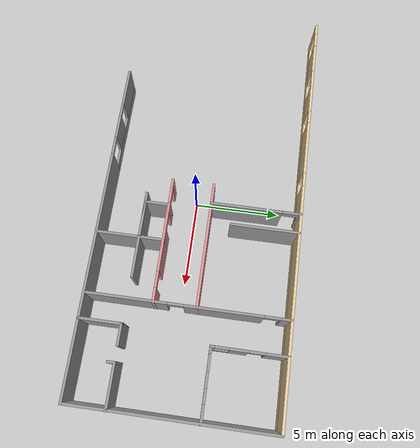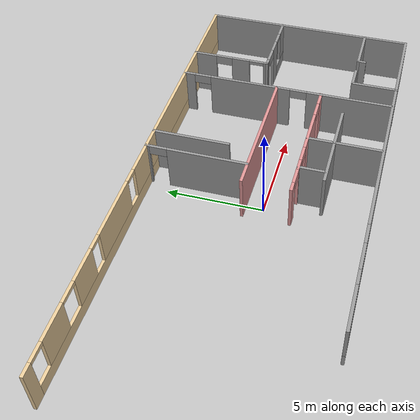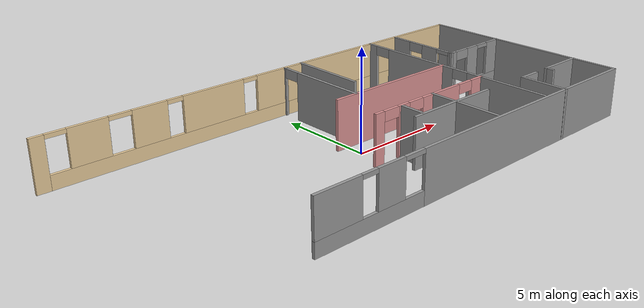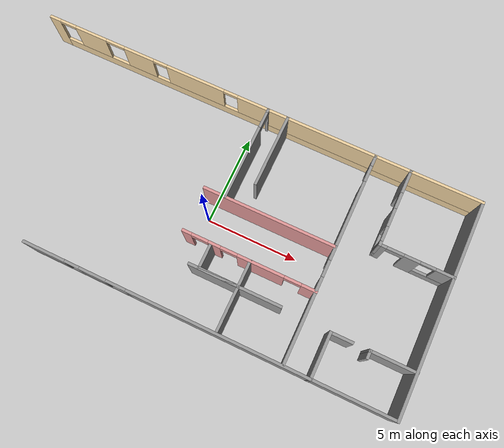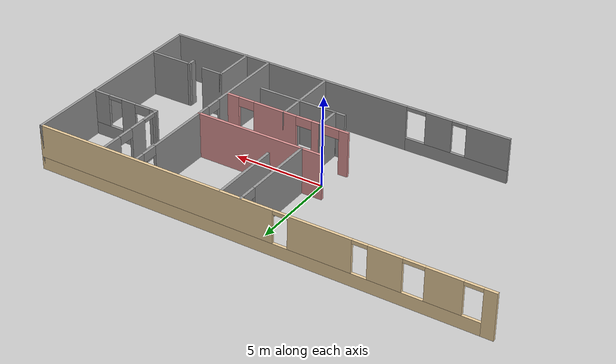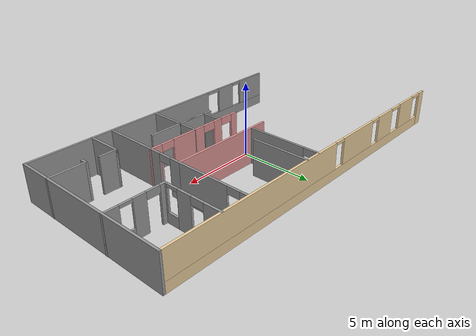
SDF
<sdf version="1.6">
 <model name="dunder_mifflin_scranton_full">
  <pose>-0.003881 -0.031915 0 0 -0 0</pose>
  <link name="Wall_31">
   <collision name="Wall_31_Collision">
    <geometry><box><size>7.25 0.15 2.5</size></box></geometry>
    <pose>0 0 1.25 0 -0 0</pose>
   </collision>
   <visual name="Wall_31_Visual">
    <pose>0 0 1.25 0 -0 0</pose>
    <geometry><box><size>7.25 0.15 2.5</size></box></geometry>
    <material>
     <script><uri>file://media/materials/scripts/gazebo.material</uri><name>Gazebo/Grey</name></script>
     <ambient>0.866667 0.584314 0.584314 1</ambient>
    </material>
    <meta><layer>0</layer></meta>
   </visual>
   <pose>3.02474 0.997169 0 0 -0 0</pose>
  </link>
  <link name="Wall_32">
   <pose>6.57474 -2.05283 0 0 -0 -1.5708</pose>
   <visual name="Wall_32_Visual_0">
    <pose>-2.72846 0 1.25 0 -0 0</pose>
    <geometry><box><size>0.793072 0.15 2.5</size></box></geometry>
    <material>
     <script><uri>file://media/materials/scripts/gazebo.material</uri><name>Gazebo/Grey</name></script>
     <ambient>1 1 1 1</ambient>
    </material>
    <meta><layer>0</layer></meta>
   </visual>
   <collision name="Wall_32_Collision_0">
    <geometry><box><size>0.793072 0.15 2.5</size></box></geometry>
    <pose>-2.72846 0 1.25 0 -0 0</pose>
   </collision>
   <visual name="Wall_32_Visual_1">
    <pose>0.846536 0 1.25 0 -0 0</pose>
    <geometry><box><size>4.55693 0.15 2.5</size></box></geometry>
    <material>
     <script><uri>file://media/materials/scripts/gazebo.material</uri><name>Gazebo/Grey</name></script>
     <ambient>1 1 1 1</ambient>
    </material>
    <meta><layer>0</layer></meta>
   </visual>
   <collision name="Wall_32_Collision_1">
    <geometry><box><size>4.55693 0.15 2.5</size></box></geometry>
    <pose>0.846536 0 1.25 0 -0 0</pose>
   </collision>
   <visual name="Wall_32_Visual_2">
    <pose>-1.88193 0 2.25 0 -0 0</pose>
    <geometry><box><size>0.9 0.15 0.5</size></box></geometry>
    <material>
     <script><uri>file://media/materials/scripts/gazebo.material</uri><name>Gazebo/Grey</name></script>
     <ambient>1 1 1 1</ambient>
    </material>
    <meta><layer>0</layer></meta>
   </visual>
   <collision name="Wall_32_Collision_2">
    <geometry><box><size>0.9 0.15 0.5</size></box></geometry>
    <pose>-1.88193 0 2.25 0 -0 0</pose>
   </collision>
  </link>
  <link name="Wall_34">
   <pose>3.04223 -1.39897 0 0 -0 0</pose>
   <visual name="Wall_34_Visual_0">
    <pose>-3.36018 0 1.25 0 -0 0</pose>
    <geometry><box><size>0.529643 0.15 2.5</size></box></geometry>
    <material>
     <script><uri>file://media/materials/scripts/gazebo.material</uri><name>Gazebo/Grey</name></script>
     <ambient>0.866667 0.584314 0.584314 1</ambient>
    </material>
    <meta><layer>0</layer></meta>
   </visual>
   <collision name="Wall_34_Collision_0">
    <geometry><box><size>0.529643 0.15 2.5</size></box></geometry>
    <pose>-3.36018 0 1.25 0 -0 0</pose>
   </collision>
   <visual name="Wall_34_Visual_1">
    <pose>-1.86211 0 1.25 0 -0 0</pose>
    <geometry><box><size>0.666501 0.15 2.5</size></box></geometry>
    <material>
     <script><uri>file://media/materials/scripts/gazebo.material</uri><name>Gazebo/Grey</name></script>
     <ambient>0.866667 0.584314 0.584314 1</ambient>
    </material>
    <meta><layer>0</layer></meta>
   </visual>
   <collision name="Wall_34_Collision_1">
    <geometry><box><size>0.666501 0.15 2.5</size></box></geometry>
    <pose>-1.86211 0 1.25 0 -0 0</pose>
   </collision>
   <visual name="Wall_34_Visual_2">
    <pose>0.624524 0 1.25 0 -0 0</pose>
    <geometry><box><size>2.50676 0.15 2.5</size></box></geometry>
    <material>
     <script><uri>file://media/materials/scripts/gazebo.material</uri><name>Gazebo/Grey</name></script>
     <ambient>0.866667 0.584314 0.584314 1</ambient>
    </material>
    <meta><layer>0</layer></meta>
   </visual>
   <collision name="Wall_34_Collision_2">
    <geometry><box><size>2.50676 0.15 2.5</size></box></geometry>
    <pose>0.624524 0 1.25 0 -0 0</pose>
   </collision>
   <visual name="Wall_34_Visual_3">
    <pose>3.20145 0 1.25 0 -0 0</pose>
    <geometry><box><size>0.847096 0.15 2.5</size></box></geometry>
    <material>
     <script><uri>file://media/materials/scripts/gazebo.material</uri><name>Gazebo/Grey</name></script>
     <ambient>0.866667 0.584314 0.584314 1</ambient>
    </material>
    <meta><layer>0</layer></meta>
   </visual>
   <collision name="Wall_34_Collision_3">
    <geometry><box><size>0.847096 0.15 2.5</size></box></geometry>
    <pose>3.20145 0 1.25 0 -0 0</pose>
   </collision>
   <visual name="Wall_34_Visual_4">
    <pose>-2.64536 0 2.25 0 -0 0</pose>
    <geometry><box><size>0.9 0.15 0.5</size></box></geometry>
    <material>
     <script><uri>file://media/materials/scripts/gazebo.material</uri><name>Gazebo/Grey</name></script>
     <ambient>0.866667 0.584314 0.584314 1</ambient>
    </material>
    <meta><layer>0</layer></meta>
   </visual>
   <collision name="Wall_34_Collision_4">
    <geometry><box><size>0.9 0.15 0.5</size></box></geometry>
    <pose>-2.64536 0 2.25 0 -0 0</pose>
   </collision>
   <visual name="Wall_34_Visual_5">
    <pose>-1.07886 0 2.25 0 -0 0</pose>
    <geometry><box><size>0.9 0.15 0.5</size></box></geometry>
    <material>
     <script><uri>file://media/materials/scripts/gazebo.material</uri><name>Gazebo/Grey</name></script>
     <ambient>0.866667 0.584314 0.584314 1</ambient>
    </material>
    <meta><layer>0</layer></meta>
   </visual>
   <collision name="Wall_34_Collision_5">
    <geometry><box><size>0.9 0.15 0.5</size></box></geometry>
    <pose>-1.07886 0 2.25 0 -0 0</pose>
   </collision>
   <visual name="Wall_34_Visual_6">
    <pose>2.3279 0 2.25 0 -0 0</pose>
    <geometry><box><size>0.9 0.15 0.5</size></box></geometry>
    <material>
     <script><uri>file://media/materials/scripts/gazebo.material</uri><name>Gazebo/Grey</name></script>
     <ambient>0.866667 0.584314 0.584314 1</ambient>
    </material>
    <meta><layer>0</layer></meta>
   </visual>
   <collision name="Wall_34_Collision_6">
    <geometry><box><size>0.9 0.15 0.5</size></box></geometry>
    <pose>2.3279 0 2.25 0 -0 0</pose>
   </collision>
  </link>
  <link name="Wall_36">
   <pose>6.57474 3.54717 0 0 -0 1.5708</pose>
   <visual name="Wall_36_Visual_0">
    <pose>-0.74582 0 1.25 0 -0 0</pose>
    <geometry><box><size>3.75836 0.15 2.5</size></box></geometry>
    <material>
     <script><uri>file://media/materials/scripts/gazebo.material</uri><name>Gazebo/Grey</name></script>
     <ambient>1 1 1 1</ambient>
    </material>
    <meta><layer>0</layer></meta>
   </visual>
   <collision name="Wall_36_Collision_0">
    <geometry><box><size>3.75836 0.15 2.5</size></box></geometry>
    <pose>-0.74582 0 1.25 0 -0 0</pose>
   </collision>
   <visual name="Wall_36_Visual_1">
    <pose>2.32918 0 1.25 0 -0 0</pose>
    <geometry><box><size>0.591641 0.15 2.5</size></box></geometry>
    <material>
     <script><uri>file://media/materials/scripts/gazebo.material</uri><name>Gazebo/Grey</name></script>
     <ambient>1 1 1 1</ambient>
    </material>
    <meta><layer>0</layer></meta>
   </visual>
   <collision name="Wall_36_Collision_1">
    <geometry><box><size>0.591641 0.15 2.5</size></box></geometry>
    <pose>2.32918 0 1.25 0 -0 0</pose>
   </collision>
   <visual name="Wall_36_Visual_2">
    <pose>1.58336 0 2.25 0 -0 0</pose>
    <geometry><box><size>0.9 0.15 0.5</size></box></geometry>
    <material>
     <script><uri>file://media/materials/scripts/gazebo.material</uri><name>Gazebo/Grey</name></script>
     <ambient>1 1 1 1</ambient>
    </material>
    <meta><layer>0</layer></meta>
   </visual>
   <collision name="Wall_36_Collision_2">
    <geometry><box><size>0.9 0.15 0.5</size></box></geometry>
    <pose>1.58336 0 2.25 0 -0 0</pose>
   </collision>
  </link>
  <link name="Wall_38">
   <pose>8.48212 4.07176 0 0 -0 -1.5708</pose>
   <visual name="Wall_38_Visual_0">
    <pose>-1.4899 0 1.25 0 -0 0</pose>
    <geometry><box><size>1.27021 0.15 2.5</size></box></geometry>
    <material>
     <script><uri>file://media/materials/scripts/gazebo.material</uri><name>Gazebo/Grey</name></script>
     <ambient>0.423529 0.423529 0.423529 1</ambient>
    </material>
    <meta><layer>0</layer></meta>
   </visual>
   <collision name="Wall_38_Collision_0">
    <geometry><box><size>1.27021 0.15 2.5</size></box></geometry>
    <pose>-1.4899 0 1.25 0 -0 0</pose>
   </collision>
   <visual name="Wall_38_Visual_1">
    <pose>0.548931 0 1.25 0 -0 0</pose>
    <geometry><box><size>1.00745 0.15 2.5</size></box></geometry>
    <material>
     <script><uri>file://media/materials/scripts/gazebo.material</uri><name>Gazebo/Grey</name></script>
     <ambient>0.423529 0.423529 0.423529 1</ambient>
    </material>
    <meta><layer>0</layer></meta>
   </visual>
   <collision name="Wall_38_Collision_1">
    <geometry><box><size>1.00745 0.15 2.5</size></box></geometry>
    <pose>0.548931 0 1.25 0 -0 0</pose>
   </collision>
   <visual name="Wall_38_Visual_2">
    <pose>1.58883 0 0.35 0 -0 0</pose>
    <geometry><box><size>1.07234 0.15 0.7</size></box></geometry>
    <material>
     <script><uri>file://media/materials/scripts/gazebo.material</uri><name>Gazebo/Grey</name></script>
     <ambient>0.423529 0.423529 0.423529 1</ambient>
    </material>
    <meta><layer>0</layer></meta>
   </visual>
   <collision name="Wall_38_Collision_2">
    <geometry><box><size>1.07234 0.15 0.7</size></box></geometry>
    <pose>1.58883 0 0.35 0 -0 0</pose>
   </collision>
   <visual name="Wall_38_Visual_3">
    <pose>1.98883 0 1.6 0 -0 0</pose>
    <geometry><box><size>0.272344 0.15 1.8</size></box></geometry>
    <material>
     <script><uri>file://media/materials/scripts/gazebo.material</uri><name>Gazebo/Grey</name></script>
     <ambient>0.423529 0.423529 0.423529 1</ambient>
    </material>
    <meta><layer>0</layer></meta>
   </visual>
   <collision name="Wall_38_Collision_3">
    <geometry><box><size>0.272344 0.15 1.8</size></box></geometry>
    <pose>1.98883 0 1.6 0 -0 0</pose>
   </collision>
   <visual name="Wall_38_Visual_4">
    <pose>-0.404794 0 2.25 0 -0 0</pose>
    <geometry><box><size>0.9 0.15 0.5</size></box></geometry>
    <material>
     <script><uri>file://media/materials/scripts/gazebo.material</uri><name>Gazebo/Grey</name></script>
     <ambient>0.423529 0.423529 0.423529 1</ambient>
    </material>
    <meta><layer>0</layer></meta>
   </visual>
   <collision name="Wall_38_Collision_4">
    <geometry><box><size>0.9 0.15 0.5</size></box></geometry>
    <pose>-0.404794 0 2.25 0 -0 0</pose>
   </collision>
   <visual name="Wall_38_Visual_5">
    <pose>1.45266 0 2.4 0 -0 0</pose>
    <geometry><box><size>0.8 0.15 0.2</size></box></geometry>
    <material>
     <script><uri>file://media/materials/scripts/gazebo.material</uri><name>Gazebo/Grey</name></script>
     <ambient>0.423529 0.423529 0.423529 1</ambient>
    </material>
    <meta><layer>0</layer></meta>
   </visual>
   <collision name="Wall_38_Collision_5">
    <geometry><box><size>0.8 0.15 0.2</size></box></geometry>
    <pose>1.45266 0 2.4 0 -0 0</pose>
   </collision>
  </link>
  <link name="Wall_39">
   <pose>10.4071 2.02176 0 0 -0 0</pose>
   <visual name="Wall_39_Visual_0">
    <pose>-1.78157 0 1.25 0 -0 0</pose>
    <geometry><box><size>0.436869 0.15 2.5</size></box></geometry>
    <material>
     <script><uri>file://media/materials/scripts/gazebo.material</uri><name>Gazebo/Grey</name></script>
     <ambient>0.423529 0.423529 0.423529 1</ambient>
    </material>
    <meta><layer>0</layer></meta>
   </visual>
   <collision name="Wall_39_Collision_0">
    <geometry><box><size>0.436869 0.15 2.5</size></box></geometry>
    <pose>-1.78157 0 1.25 0 -0 0</pose>
   </collision>
   <visual name="Wall_39_Visual_1">
    <pose>-0.241405 0 1.25 0 -0 0</pose>
    <geometry><box><size>0.843451 0.15 2.5</size></box></geometry>
    <material>
     <script><uri>file://media/materials/scripts/gazebo.material</uri><name>Gazebo/Grey</name></script>
     <ambient>0.423529 0.423529 0.423529 1</ambient>
    </material>
    <meta><layer>0</layer></meta>
   </visual>
   <collision name="Wall_39_Collision_1">
    <geometry><box><size>0.843451 0.15 2.5</size></box></geometry>
    <pose>-0.241405 0 1.25 0 -0 0</pose>
   </collision>
   <visual name="Wall_39_Visual_2">
    <pose>1.09016 0 0.35 0 -0 0</pose>
    <geometry><box><size>1.81968 0.15 0.7</size></box></geometry>
    <material>
     <script><uri>file://media/materials/scripts/gazebo.material</uri><name>Gazebo/Grey</name></script>
     <ambient>0.423529 0.423529 0.423529 1</ambient>
    </material>
    <meta><layer>0</layer></meta>
   </visual>
   <collision name="Wall_39_Collision_2">
    <geometry><box><size>1.81968 0.15 0.7</size></box></geometry>
    <pose>1.09016 0 0.35 0 -0 0</pose>
   </collision>
   <visual name="Wall_39_Visual_3">
    <pose>1.49016 0 1.6 0 -0 0</pose>
    <geometry><box><size>1.01968 0.15 1.8</size></box></geometry>
    <material>
     <script><uri>file://media/materials/scripts/gazebo.material</uri><name>Gazebo/Grey</name></script>
     <ambient>0.423529 0.423529 0.423529 1</ambient>
    </material>
    <meta><layer>0</layer></meta>
   </visual>
   <collision name="Wall_39_Collision_3">
    <geometry><box><size>1.01968 0.15 1.8</size></box></geometry>
    <pose>1.49016 0 1.6 0 -0 0</pose>
   </collision>
   <visual name="Wall_39_Visual_4">
    <pose>-1.11313 0 2.25 0 -0 0</pose>
    <geometry><box><size>0.9 0.15 0.5</size></box></geometry>
    <material>
     <script><uri>file://media/materials/scripts/gazebo.material</uri><name>Gazebo/Grey</name></script>
     <ambient>0.423529 0.423529 0.423529 1</ambient>
    </material>
    <meta><layer>0</layer></meta>
   </visual>
   <collision name="Wall_39_Collision_4">
    <geometry><box><size>0.9 0.15 0.5</size></box></geometry>
    <pose>-1.11313 0 2.25 0 -0 0</pose>
   </collision>
   <visual name="Wall_39_Visual_5">
    <pose>0.58032 0 2.4 0 -0 0</pose>
    <geometry><box><size>0.8 0.15 0.2</size></box></geometry>
    <material>
     <script><uri>file://media/materials/scripts/gazebo.material</uri><name>Gazebo/Grey</name></script>
     <ambient>0.423529 0.423529 0.423529 1</ambient>
    </material>
    <meta><layer>0</layer></meta>
   </visual>
   <collision name="Wall_39_Collision_5">
    <geometry><box><size>0.8 0.15 0.2</size></box></geometry>
    <pose>0.58032 0 2.4 0 -0 0</pose>
   </collision>
  </link>
  <link name="Wall_41">
   <collision name="Wall_41_Collision">
    <geometry><box><size>2.5 0.15 2.5</size></box></geometry>
    <pose>0 0 1.25 0 -0 0</pose>
   </collision>
   <visual name="Wall_41_Visual">
    <pose>0 0 1.25 0 -0 0</pose>
    <geometry><box><size>2.5 0.15 2.5</size></box></geometry>
    <material>
     <script><uri>file://media/materials/scripts/gazebo.material</uri><name>Gazebo/Grey</name></script>
     <ambient>1 1 1 1</ambient>
    </material>
    <meta><layer>0</layer></meta>
   </visual>
   <pose>11.1549 -2.85065 0 0 -0 3.14159</pose>
  </link>
  <link name="Wall_42">
   <collision name="Wall_42_Collision">
    <geometry><box><size>0.5 0.15 2.5</size></box></geometry>
    <pose>0 0 1.25 0 -0 0</pose>
   </collision>
   <visual name="Wall_42_Visual">
    <pose>0 0 1.25 0 -0 0</pose>
    <geometry><box><size>0.5 0.15 2.5</size></box></geometry>
    <material>
     <script><uri>file://media/materials/scripts/gazebo.material</uri><name>Gazebo/Grey</name></script>
     <ambient>1 1 1 1</ambient>
    </material>
    <meta><layer>0</layer></meta>
   </visual>
   <pose>9.97994 -3.02564 0 0 -0 -1.5708</pose>
  </link>
  <link name="Wall_44">
   <collision name="Wall_44_Collision">
    <geometry><box><size>2.5 0.15 2.5</size></box></geometry>
    <pose>0 0 1.25 0 -0 0</pose>
   </collision>
   <visual name="Wall_44_Visual">
    <pose>0 0 1.25 0 -0 0</pose>
    <geometry><box><size>2.5 0.15 2.5</size></box></geometry>
    <material>
     <script><uri>file://media/materials/scripts/gazebo.material</uri><name>Gazebo/Grey</name></script>
     <ambient>1 1 1 1</ambient>
    </material>
    <meta><layer>0</layer></meta>
   </visual>
   <pose>7.97491 -4.0368 0 0 -0 1.5708</pose>
  </link>
  <link name="Wall_45">
   <collision name="Wall_45_Collision">
    <geometry><box><size>1.25 0.15 2.5</size></box></geometry>
    <pose>0 0 1.25 0 -0 0</pose>
   </collision>
   <visual name="Wall_45_Visual">
    <pose>0 0 1.25 0 -0 0</pose>
    <geometry><box><size>1.25 0.15 2.5</size></box></geometry>
    <material>
     <script><uri>file://media/materials/scripts/gazebo.material</uri><name>Gazebo/Grey</name></script>
     <ambient>1 1 1 1</ambient>
    </material>
    <meta><layer>0</layer></meta>
   </visual>
   <pose>8.52491 -2.8618 0 0 -0 0</pose>
  </link>
  <link name="Wall_55">
   <collision name="Wall_55_Collision">
    <geometry><box><size>1.5 0.15 2.5</size></box></geometry>
    <pose>0 0 1.25 0 -0 0</pose>
   </collision>
   <visual name="Wall_55_Visual">
    <pose>0 0 1.25 0 -0 0</pose>
    <geometry><box><size>1.5 0.15 2.5</size></box></geometry>
    <material>
     <script><uri>file://media/materials/scripts/gazebo.material</uri><name>Gazebo/Grey</name></script>
     <ambient>1 1 1 1</ambient>
    </material>
    <meta><layer>0</layer></meta>
   </visual>
   <pose>1.01387 -2.07397 0 0 -0 -1.5708</pose>
  </link>
  <link name="Wall_56">
   <collision name="Wall_56_Collision">
    <geometry><box><size>2.25 0.15 2.5</size></box></geometry>
    <pose>0 0 1.25 0 -0 0</pose>
   </collision>
   <visual name="Wall_56_Visual">
    <pose>0 0 1.25 0 -0 0</pose>
    <geometry><box><size>2.25 0.15 2.5</size></box></geometry>
    <material>
     <script><uri>file://media/materials/scripts/gazebo.material</uri><name>Gazebo/Grey</name></script>
     <ambient>1 1 1 1</ambient>
    </material>
    <meta><layer>0</layer></meta>
   </visual>
   <pose>2.06386 -2.74897 0 0 -0 0</pose>
  </link>
  <link name="Wall_57">
   <collision name="Wall_57_Collision">
    <geometry><box><size>2.5 0.15 2.5</size></box></geometry>
    <pose>0 0 1.25 0 -0 0</pose>
   </collision>
   <visual name="Wall_57_Visual">
    <pose>0 0 1.25 0 -0 0</pose>
    <geometry><box><size>2.5 0.15 2.5</size></box></geometry>
    <material>
     <script><uri>file://media/materials/scripts/gazebo.material</uri><name>Gazebo/Grey</name></script>
     <ambient>1 1 1 1</ambient>
    </material>
    <meta><layer>0</layer></meta>
   </visual>
   <pose>3.11387 -3.92397 0 0 -0 -1.5708</pose>
  </link>
  <link name="Wall_59">
   <collision name="Wall_59_Collision">
    <geometry><box><size>1.5 0.15 2.5</size></box></geometry>
    <pose>0 0 1.25 0 -0 0</pose>
   </collision>
   <visual name="Wall_59_Visual">
    <pose>0 0 1.25 0 -0 0</pose>
    <geometry><box><size>1.5 0.15 2.5</size></box></geometry>
    <material>
     <script><uri>file://media/materials/scripts/gazebo.material</uri><name>Gazebo/Grey</name></script>
     <ambient>1 1 1 1</ambient>
    </material>
    <meta><layer>0</layer></meta>
   </visual>
   <pose>3.11387 -2.07397 0 0 -0 1.5708</pose>
  </link>
  <link name="Wall_6">
   <pose>0.017879 6.15 0 0 -0 0</pose>
   <visual name="Wall_6_Visual_0">
    <pose>-12.0548 0 1.25 0 -0 0</pose>
    <geometry><box><size>0.640363 0.15 2.5</size></box></geometry>
    <material>
     <script><uri>file://media/materials/scripts/gazebo.material</uri><name>Gazebo/Grey</name></script>
     <ambient>0.921569 0.807843 0.615686 1</ambient>
    </material>
    <meta><layer>0</layer></meta>
   </visual>
   <collision name="Wall_6_Collision_0">
    <geometry><box><size>0.640363 0.15 2.5</size></box></geometry>
    <pose>-12.0548 0 1.25 0 -0 0</pose>
   </collision>
   <visual name="Wall_6_Visual_1">
    <pose>0.320182 0 0.35 0 -0 0</pose>
    <geometry><box><size>24.1096 0.15 0.7</size></box></geometry>
    <material>
     <script><uri>file://media/materials/scripts/gazebo.material</uri><name>Gazebo/Grey</name></script>
     <ambient>0.921569 0.807843 0.615686 1</ambient>
    </material>
    <meta><layer>0</layer></meta>
   </visual>
   <collision name="Wall_6_Collision_1">
    <geometry><box><size>24.1096 0.15 0.7</size></box></geometry>
    <pose>0.320182 0 0.35 0 -0 0</pose>
   </collision>
   <visual name="Wall_6_Visual_2">
    <pose>-9.87682 0 1.6 0 -0 0</pose>
    <geometry><box><size>1.84964 0.15 1.8</size></box></geometry>
    <material>
     <script><uri>file://media/materials/scripts/gazebo.material</uri><name>Gazebo/Grey</name></script>
     <ambient>0.921569 0.807843 0.615686 1</ambient>
    </material>
    <meta><layer>0</layer></meta>
   </visual>
   <collision name="Wall_6_Collision_2">
    <geometry><box><size>1.84964 0.15 1.8</size></box></geometry>
    <pose>-9.87682 0 1.6 0 -0 0</pose>
   </collision>
   <visual name="Wall_6_Visual_3">
    <pose>-6.99137 0 1.6 0 -0 0</pose>
    <geometry><box><size>1.74331 0.15 1.8</size></box></geometry>
    <material>
     <script><uri>file://media/materials/scripts/gazebo.material</uri><name>Gazebo/Grey</name></script>
     <ambient>0.921569 0.807843 0.615686 1</ambient>
    </material>
    <meta><layer>0</layer></meta>
   </visual>
   <collision name="Wall_6_Collision_3">
    <geometry><box><size>1.74331 0.15 1.8</size></box></geometry>
    <pose>-6.99137 0 1.6 0 -0 0</pose>
   </collision>
   <visual name="Wall_6_Visual_4">
    <pose>-3.6528 0 1.6 0 -0 0</pose>
    <geometry><box><size>3.33383 0.15 1.8</size></box></geometry>
    <material>
     <script><uri>file://media/materials/scripts/gazebo.material</uri><name>Gazebo/Grey</name></script>
     <ambient>0.921569 0.807843 0.615686 1</ambient>
    </material>
    <meta><layer>0</layer></meta>
   </visual>
   <collision name="Wall_6_Collision_4">
    <geometry><box><size>3.33383 0.15 1.8</size></box></geometry>
    <pose>-3.6528 0 1.6 0 -0 0</pose>
   </collision>
   <visual name="Wall_6_Visual_5">
    <pose>5.59456 0 1.6 0 -0 0</pose>
    <geometry><box><size>13.5609 0.15 1.8</size></box></geometry>
    <material>
     <script><uri>file://media/materials/scripts/gazebo.material</uri><name>Gazebo/Grey</name></script>
     <ambient>0.921569 0.807843 0.615686 1</ambient>
    </material>
    <meta><layer>0</layer></meta>
   </visual>
   <collision name="Wall_6_Collision_5">
    <geometry><box><size>13.5609 0.15 1.8</size></box></geometry>
    <pose>5.59456 0 1.6 0 -0 0</pose>
   </collision>
   <visual name="Wall_6_Visual_6">
    <pose>-11.2681 0 2.4 0 -0 0</pose>
    <geometry><box><size>0.933 0.15 0.2</size></box></geometry>
    <material>
     <script><uri>file://media/materials/scripts/gazebo.material</uri><name>Gazebo/Grey</name></script>
     <ambient>0.921569 0.807843 0.615686 1</ambient>
    </material>
    <meta><layer>0</layer></meta>
   </visual>
   <collision name="Wall_6_Collision_6">
    <geometry><box><size>0.933 0.15 0.2</size></box></geometry>
    <pose>-11.2681 0 2.4 0 -0 0</pose>
   </collision>
   <visual name="Wall_6_Visual_7">
    <pose>-8.40751 0 2.4 0 -0 0</pose>
    <geometry><box><size>1.08897 0.15 0.2</size></box></geometry>
    <material>
     <script><uri>file://media/materials/scripts/gazebo.material</uri><name>Gazebo/Grey</name></script>
     <ambient>0.921569 0.807843 0.615686 1</ambient>
    </material>
    <meta><layer>0</layer></meta>
   </visual>
   <collision name="Wall_6_Collision_7">
    <geometry><box><size>1.08897 0.15 0.2</size></box></geometry>
    <pose>-8.40751 0 2.4 0 -0 0</pose>
   </collision>
   <visual name="Wall_6_Visual_8">
    <pose>-5.71972 0 2.4 0 -0 0</pose>
    <geometry><box><size>0.8 0.15 0.2</size></box></geometry>
    <material>
     <script><uri>file://media/materials/scripts/gazebo.material</uri><name>Gazebo/Grey</name></script>
     <ambient>0.921569 0.807843 0.615686 1</ambient>
    </material>
    <meta><layer>0</layer></meta>
   </visual>
   <collision name="Wall_6_Collision_8">
    <geometry><box><size>0.8 0.15 0.2</size></box></geometry>
    <pose>-5.71972 0 2.4 0 -0 0</pose>
   </collision>
   <visual name="Wall_6_Visual_9">
    <pose>-1.58589 0 2.4 0 -0 0</pose>
    <geometry><box><size>0.8 0.15 0.2</size></box></geometry>
    <material>
     <script><uri>file://media/materials/scripts/gazebo.material</uri><name>Gazebo/Grey</name></script>
     <ambient>0.921569 0.807843 0.615686 1</ambient>
    </material>
    <meta><layer>0</layer></meta>
   </visual>
   <collision name="Wall_6_Collision_9">
    <geometry><box><size>0.8 0.15 0.2</size></box></geometry>
    <pose>-1.58589 0 2.4 0 -0 0</pose>
   </collision>
  </link>
  <link name="Wall_62">
   <collision name="Wall_62_Collision">
    <geometry><box><size>5 0.15 2.5</size></box></geometry>
    <pose>0 0 1.25 0 -0 0</pose>
   </collision>
   <visual name="Wall_62_Visual">
    <pose>0 0 1.25 0 -0 0</pose>
    <geometry><box><size>5 0.15 2.5</size></box></geometry>
    <material>
     <script><uri>file://media/materials/scripts/gazebo.material</uri><name>Gazebo/Grey</name></script>
     <ambient>1 1 1 1</ambient>
    </material>
    <meta><layer>0</layer></meta>
   </visual>
   <pose>2.93165 -2.76319 0 0 -0 0</pose>
  </link>
  <link name="Wall_7">
   <collision name="Wall_7_Collision">
    <geometry><box><size>11.5 0.15 2.5</size></box></geometry>
    <pose>0 0 1.25 0 -0 0</pose>
   </collision>
   <visual name="Wall_7_Visual">
    <pose>0 0 1.25 0 -0 0</pose>
    <geometry><box><size>11.5 0.15 2.5</size></box></geometry>
    <material>
     <script><uri>file://media/materials/scripts/gazebo.material</uri><name>Gazebo/Grey</name></script>
     <ambient>1 1 1 1</ambient>
    </material>
    <meta><layer>0</layer></meta>
   </visual>
   <pose>12.3179 0.475 0 0 -0 -1.5708</pose>
  </link>
  <link name="Wall_77">
   <pose>0.584717 3.57027 0 0 -0 1.5708</pose>
   <visual name="Wall_77_Visual_0">
    <pose>-0.554466 0 1.25 0 -0 0</pose>
    <geometry><box><size>4.14107 0.15 2.5</size></box></geometry>
    <material>
     <script><uri>file://media/materials/scripts/gazebo.material</uri><name>Gazebo/Grey</name></script>
     <ambient>1 1 1 1</ambient>
    </material>
    <meta><layer>0</layer></meta>
   </visual>
   <collision name="Wall_77_Collision_0">
    <geometry><box><size>4.14107 0.15 2.5</size></box></geometry>
    <pose>-0.554466 0 1.25 0 -0 0</pose>
   </collision>
   <visual name="Wall_77_Visual_1">
    <pose>2.52053 0 1.25 0 -0 0</pose>
    <geometry><box><size>0.208931 0.15 2.5</size></box></geometry>
    <material>
     <script><uri>file://media/materials/scripts/gazebo.material</uri><name>Gazebo/Grey</name></script>
     <ambient>1 1 1 1</ambient>
    </material>
    <meta><layer>0</layer></meta>
   </visual>
   <collision name="Wall_77_Collision_1">
    <geometry><box><size>0.208931 0.15 2.5</size></box></geometry>
    <pose>2.52053 0 1.25 0 -0 0</pose>
   </collision>
   <visual name="Wall_77_Visual_2">
    <pose>1.96607 0 2.25 0 -0 0</pose>
    <geometry><box><size>0.9 0.15 0.5</size></box></geometry>
    <material>
     <script><uri>file://media/materials/scripts/gazebo.material</uri><name>Gazebo/Grey</name></script>
     <ambient>1 1 1 1</ambient>
    </material>
    <meta><layer>0</layer></meta>
   </visual>
   <collision name="Wall_77_Collision_2">
    <geometry><box><size>0.9 0.15 0.5</size></box></geometry>
    <pose>1.96607 0 2.25 0 -0 0</pose>
   </collision>
  </link>
  <link name="Wall_8">
   <pose>2.51788 -5.2 0 0 -0 3.14159</pose>
   <visual name="Wall_8_Visual_0">
    <pose>-2.83559 0 1.25 0 -0 0</pose>
    <geometry><box><size>14.0788 0.15 2.5</size></box></geometry>
    <material>
     <script><uri>file://media/materials/scripts/gazebo.material</uri><name>Gazebo/Grey</name></script>
     <ambient>1 1 1 1</ambient>
    </material>
    <meta><layer>0</layer></meta>
   </visual>
   <collision name="Wall_8_Collision_0">
    <geometry><box><size>14.0788 0.15 2.5</size></box></geometry>
    <pose>-2.83559 0 1.25 0 -0 0</pose>
   </collision>
   <visual name="Wall_8_Visual_1">
    <pose>7.03941 0 0.35 0 -0 0</pose>
    <geometry><box><size>5.67118 0.15 0.7</size></box></geometry>
    <material>
     <script><uri>file://media/materials/scripts/gazebo.material</uri><name>Gazebo/Grey</name></script>
     <ambient>1 1 1 1</ambient>
    </material>
    <meta><layer>0</layer></meta>
   </visual>
   <collision name="Wall_8_Collision_1">
    <geometry><box><size>5.67118 0.15 0.7</size></box></geometry>
    <pose>7.03941 0 0.35 0 -0 0</pose>
   </collision>
   <visual name="Wall_8_Visual_2">
    <pose>6.0123 0 1.6 0 -0 0</pose>
    <geometry><box><size>1.45519 0.15 1.8</size></box></geometry>
    <material>
     <script><uri>file://media/materials/scripts/gazebo.material</uri><name>Gazebo/Grey</name></script>
     <ambient>1 1 1 1</ambient>
    </material>
    <meta><layer>0</layer></meta>
   </visual>
   <collision name="Wall_8_Collision_2">
    <geometry><box><size>1.45519 0.15 1.8</size></box></geometry>
    <pose>6.0123 0 1.6 0 -0 0</pose>
   </collision>
   <visual name="Wall_8_Visual_3">
    <pose>8.70745 0 1.6 0 -0 0</pose>
    <geometry><box><size>2.33511 0.15 1.8</size></box></geometry>
    <material>
     <script><uri>file://media/materials/scripts/gazebo.material</uri><name>Gazebo/Grey</name></script>
     <ambient>1 1 1 1</ambient>
    </material>
    <meta><layer>0</layer></meta>
   </visual>
   <collision name="Wall_8_Collision_3">
    <geometry><box><size>2.33511 0.15 1.8</size></box></geometry>
    <pose>8.70745 0 1.6 0 -0 0</pose>
   </collision>
   <visual name="Wall_8_Visual_4">
    <pose>4.74426 0 2.4 0 -0 0</pose>
    <geometry><box><size>1.08089 0.15 0.2</size></box></geometry>
    <material>
     <script><uri>file://media/materials/scripts/gazebo.material</uri><name>Gazebo/Grey</name></script>
     <ambient>1 1 1 1</ambient>
    </material>
    <meta><layer>0</layer></meta>
   </visual>
   <collision name="Wall_8_Collision_4">
    <geometry><box><size>1.08089 0.15 0.2</size></box></geometry>
    <pose>4.74426 0 2.4 0 -0 0</pose>
   </collision>
   <visual name="Wall_8_Visual_5">
    <pose>7.13989 0 2.4 0 -0 0</pose>
    <geometry><box><size>0.8 0.15 0.2</size></box></geometry>
    <material>
     <script><uri>file://media/materials/scripts/gazebo.material</uri><name>Gazebo/Grey</name></script>
     <ambient>1 1 1 1</ambient>
    </material>
    <meta><layer>0</layer></meta>
   </visual>
   <collision name="Wall_8_Collision_5">
    <geometry><box><size>0.8 0.15 0.2</size></box></geometry>
    <pose>7.13989 0 2.4 0 -0 0</pose>
   </collision>
  </link>
  <link name="Wall_81">
   <collision name="Wall_81_Collision">
    <geometry><box><size>4 0.15 2.5</size></box></geometry>
    <pose>0 0 1.25 0 -0 0</pose>
   </collision>
   <visual name="Wall_81_Visual">
    <pose>0 0 1.25 0 -0 0</pose>
    <geometry><box><size>4 0.15 2.5</size></box></geometry>
    <material>
     <script><uri>file://media/materials/scripts/gazebo.material</uri><name>Gazebo/Grey</name></script>
     <ambient>1 1 1 1</ambient>
    </material>
    <meta><layer>0</layer></meta>
   </visual>
   <pose>1.68322 4.20127 0 0 -0 -1.5708</pose>
  </link>
  <static>1</static>
 </model>
</sdf>
